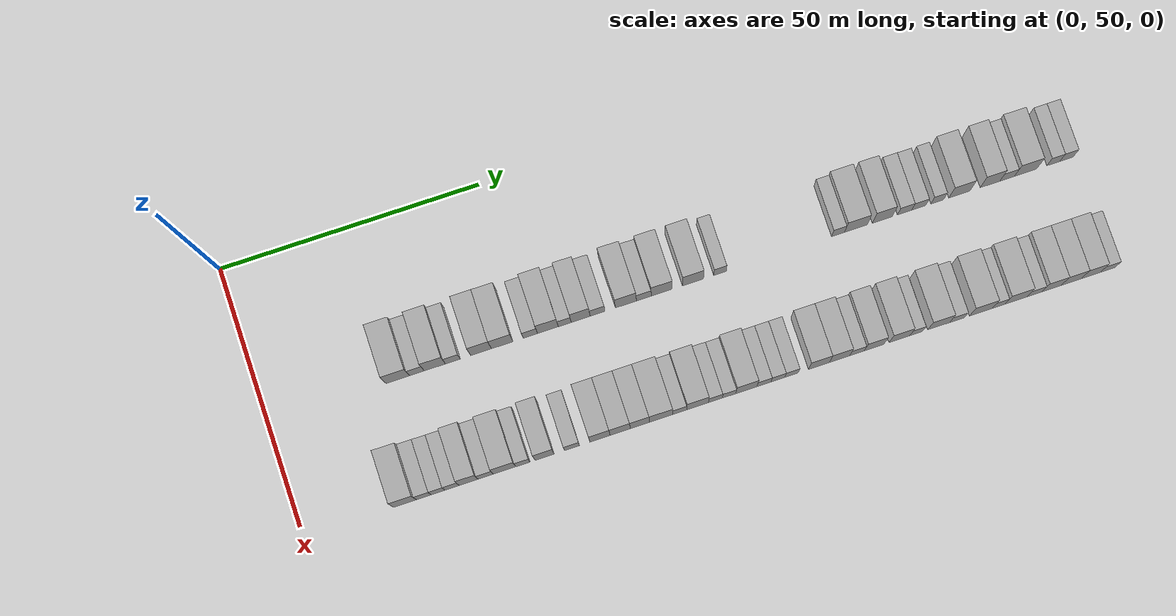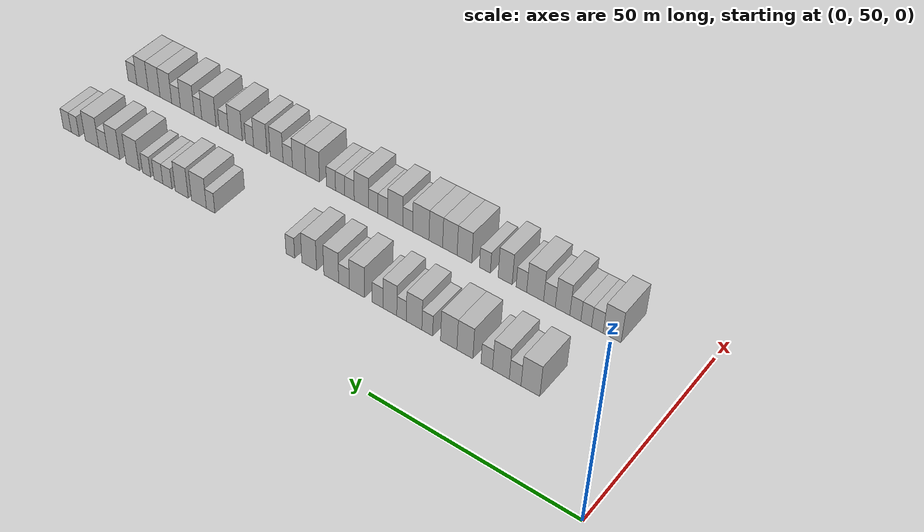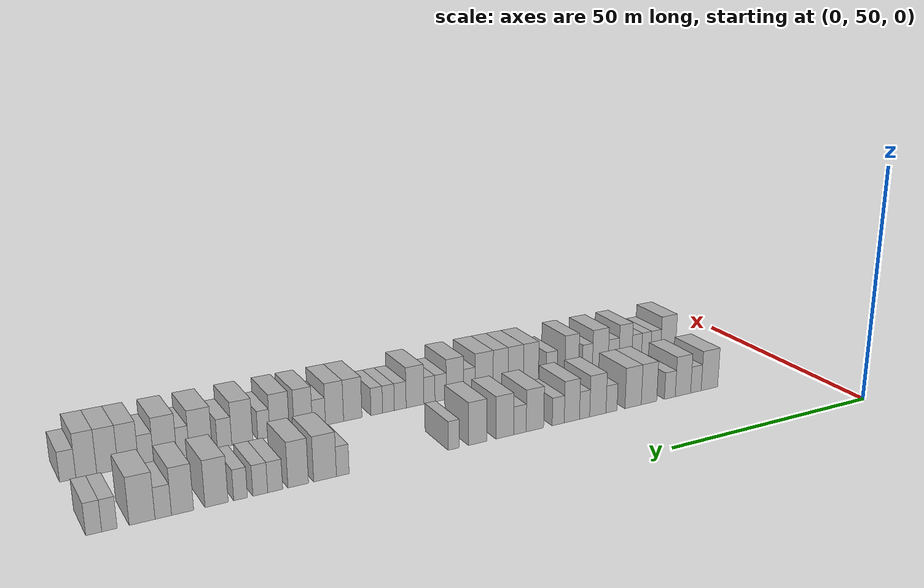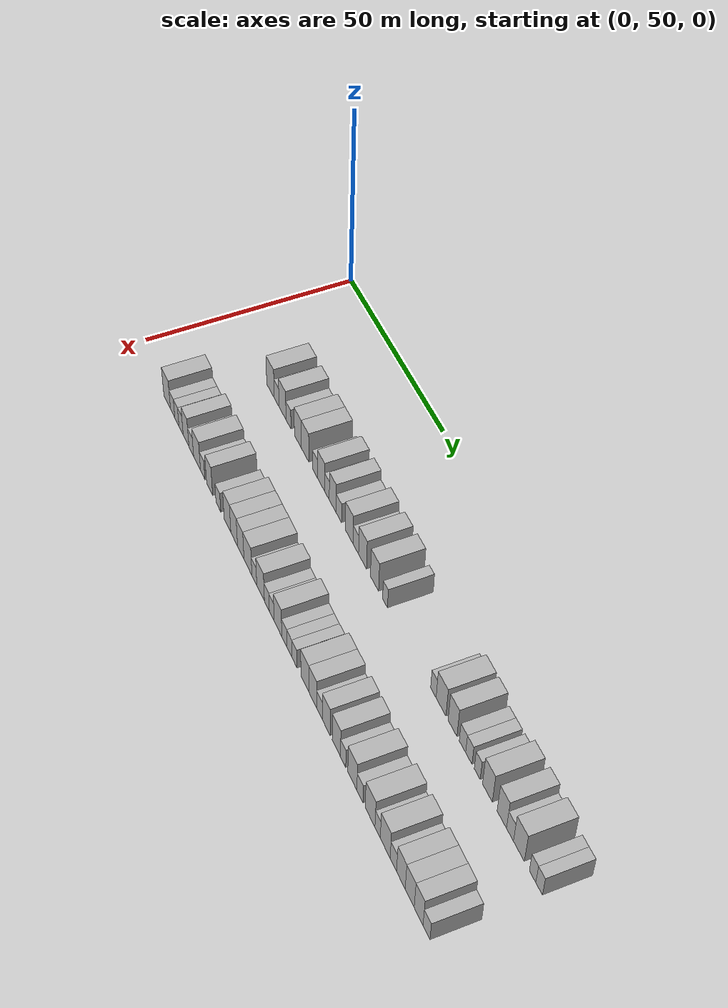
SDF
<sdf version="1.6">
 <world name="default">
  <model name="building_64">
   <static>1</static>
   <pose>25.0000 74.9126 0 0.000000 0.000000 0.000000</pose>
   <link name="link">
    <pose>0 0 4.50 0 0 0</pose>
    <collision name="collision"><geometry><box><size>10.0000 4.4943 9.0000</size></box></geometry></collision>
    <visual name="visual">
     <cast_shadows>0</cast_shadows>
     <geometry><box><size>10.0000 4.4943 9.0000</size></box></geometry>
     <material>
      <script>
       <uri>model://HANNAS_wall/materials/scripts</uri>
       <uri>model://HANNAS_wall/materials/textures</uri>
       <name>vrc/HANNAS_wall</name>
      </script>
     </material>
    </visual>
   </link>
  </model>
  <model name="building_65">
   <static>1</static>
   <pose>25.0000 78.5723 0 0.000000 0.000000 0.000000</pose>
   <link name="link">
    <pose>0 0 3.00 0 0 0</pose>
    <collision name="collision"><geometry><box><size>10.0000 2.8252 6.0000</size></box></geometry></collision>
    <visual name="visual">
     <cast_shadows>0</cast_shadows>
     <geometry><box><size>10.0000 2.8252 6.0000</size></box></geometry>
     <material>
      <script>
       <uri>model://HANNAS_wall/materials/scripts</uri>
       <uri>model://HANNAS_wall/materials/textures</uri>
       <name>vrc/HANNAS_wall</name>
      </script>
     </material>
    </visual>
   </link>
  </model>
  <model name="building_66">
   <static>1</static>
   <pose>25.0000 82.0260 0 0.000000 0.000000 0.000000</pose>
   <link name="link">
    <pose>0 0 4.50 0 0 0</pose>
    <collision name="collision"><geometry><box><size>10.0000 4.0823 9.0000</size></box></geometry></collision>
    <visual name="visual">
     <cast_shadows>0</cast_shadows>
     <geometry><box><size>10.0000 4.0823 9.0000</size></box></geometry>
     <material>
      <script>
       <uri>model://HANNAS_wall/materials/scripts</uri>
       <uri>model://HANNAS_wall/materials/textures</uri>
       <name>vrc/HANNAS_wall</name>
      </script>
     </material>
    </visual>
   </link>
  </model>
  <model name="building_67">
   <static>1</static>
   <pose>25.0000 85.4873 0 0.000000 0.000000 0.000000</pose>
   <link name="link">
    <pose>0 0 3.00 0 0 0</pose>
    <collision name="collision"><geometry><box><size>10.0000 2.8402 6.0000</size></box></geometry></collision>
    <visual name="visual">
     <cast_shadows>0</cast_shadows>
     <geometry><box><size>10.0000 2.8402 6.0000</size></box></geometry>
     <material>
      <script>
       <uri>model://HANNAS_wall/materials/scripts</uri>
       <uri>model://HANNAS_wall/materials/textures</uri>
       <name>vrc/HANNAS_wall</name>
      </script>
     </material>
    </visual>
   </link>
  </model>
  <model name="building_68">
   <static>1</static>
   <pose>25.0000 90.8991 0 0.000000 0.000000 0.000000</pose>
   <link name="link">
    <pose>0 0 4.50 0 0 0</pose>
    <collision name="collision"><geometry><box><size>10.0000 3.9835 9.0000</size></box></geometry></collision>
    <visual name="visual">
     <cast_shadows>0</cast_shadows>
     <geometry><box><size>10.0000 3.9835 9.0000</size></box></geometry>
     <material>
      <script>
       <uri>model://HANNAS_wall/materials/scripts</uri>
       <uri>model://HANNAS_wall/materials/textures</uri>
       <name>vrc/HANNAS_wall</name>
      </script>
     </material>
    </visual>
   </link>
  </model>
  <model name="building_69">
   <static>1</static>
   <pose>25.0000 94.9540 0 0.000000 0.000000 0.000000</pose>
   <link name="link">
    <pose>0 0 4.50 0 0 0</pose>
    <collision name="collision"><geometry><box><size>10.0000 4.1263 9.0000</size></box></geometry></collision>
    <visual name="visual">
     <cast_shadows>0</cast_shadows>
     <geometry><box><size>10.0000 4.1263 9.0000</size></box></geometry>
     <material>
      <script>
       <uri>model://HANNAS_wall/materials/scripts</uri>
       <uri>model://HANNAS_wall/materials/textures</uri>
       <name>vrc/HANNAS_wall</name>
      </script>
     </material>
    </visual>
   </link>
  </model>
  <model name="building_70">
   <static>1</static>
   <pose>25.0000 100.3915 0 0.000000 0.000000 0.000000</pose>
   <link name="link">
    <pose>0 0 3.00 0 0 0</pose>
    <collision name="collision"><geometry><box><size>10.0000 2.7487 6.0000</size></box></geometry></collision>
    <visual name="visual">
     <cast_shadows>0</cast_shadows>
     <geometry><box><size>10.0000 2.7487 6.0000</size></box></geometry>
     <material>
      <script>
       <uri>model://HANNAS_wall/materials/scripts</uri>
       <uri>model://HANNAS_wall/materials/textures</uri>
       <name>vrc/HANNAS_wall</name>
      </script>
     </material>
    </visual>
   </link>
  </model>
  <model name="building_71">
   <static>1</static>
   <pose>25.0000 103.7699 0 0.000000 0.000000 0.000000</pose>
   <link name="link">
    <pose>0 0 4.50 0 0 0</pose>
    <collision name="collision"><geometry><box><size>10.0000 4.0080 9.0000</size></box></geometry></collision>
    <visual name="visual">
     <cast_shadows>0</cast_shadows>
     <geometry><box><size>10.0000 4.0080 9.0000</size></box></geometry>
     <material>
      <script>
       <uri>model://HANNAS_wall/materials/scripts</uri>
       <uri>model://HANNAS_wall/materials/textures</uri>
       <name>vrc/HANNAS_wall</name>
      </script>
     </material>
    </visual>
   </link>
  </model>
  <model name="building_72">
   <static>1</static>
   <pose>25.0000 107.0148 0 0.000000 0.000000 0.000000</pose>
   <link name="link">
    <pose>0 0 3.00 0 0 0</pose>
    <collision name="collision"><geometry><box><size>10.0000 2.4818 6.0000</size></box></geometry></collision>
    <visual name="visual">
     <cast_shadows>0</cast_shadows>
     <geometry><box><size>10.0000 2.4818 6.0000</size></box></geometry>
     <material>
      <script>
       <uri>model://HANNAS_wall/materials/scripts</uri>
       <uri>model://HANNAS_wall/materials/textures</uri>
       <name>vrc/HANNAS_wall</name>
      </script>
     </material>
    </visual>
   </link>
  </model>
  <model name="building_73">
   <static>1</static>
   <pose>25.0000 110.0817 0 0.000000 0.000000 0.000000</pose>
   <link name="link">
    <pose>0 0 4.50 0 0 0</pose>
    <collision name="collision"><geometry><box><size>10.0000 3.6520 9.0000</size></box></geometry></collision>
    <visual name="visual">
     <cast_shadows>0</cast_shadows>
     <geometry><box><size>10.0000 3.6520 9.0000</size></box></geometry>
     <material>
      <script>
       <uri>model://HANNAS_wall/materials/scripts</uri>
       <uri>model://HANNAS_wall/materials/textures</uri>
       <name>vrc/HANNAS_wall</name>
      </script>
     </material>
    </visual>
   </link>
  </model>
  <model name="building_74">
   <static>1</static>
   <pose>25.0000 113.3369 0 0.000000 0.000000 0.000000</pose>
   <link name="link">
    <pose>0 0 3.00 0 0 0</pose>
    <collision name="collision"><geometry><box><size>10.0000 2.8584 6.0000</size></box></geometry></collision>
    <visual name="visual">
     <cast_shadows>0</cast_shadows>
     <geometry><box><size>10.0000 2.8584 6.0000</size></box></geometry>
     <material>
      <script>
       <uri>model://HANNAS_wall/materials/scripts</uri>
       <uri>model://HANNAS_wall/materials/textures</uri>
       <name>vrc/HANNAS_wall</name>
      </script>
     </material>
    </visual>
   </link>
  </model>
  <model name="building_75">
   <static>1</static>
   <pose>25.0000 118.7987 0 0.000000 0.000000 0.000000</pose>
   <link name="link">
    <pose>0 0 4.50 0 0 0</pose>
    <collision name="collision"><geometry><box><size>10.0000 4.0652 9.0000</size></box></geometry></collision>
    <visual name="visual">
     <cast_shadows>0</cast_shadows>
     <geometry><box><size>10.0000 4.0652 9.0000</size></box></geometry>
     <material>
      <script>
       <uri>model://HANNAS_wall/materials/scripts</uri>
       <uri>model://HANNAS_wall/materials/textures</uri>
       <name>vrc/HANNAS_wall</name>
      </script>
     </material>
    </visual>
   </link>
  </model>
  <model name="building_76">
   <static>1</static>
   <pose>25.0000 122.2669 0 0.000000 0.000000 0.000000</pose>
   <link name="link">
    <pose>0 0 3.00 0 0 0</pose>
    <collision name="collision"><geometry><box><size>10.0000 2.8713 6.0000</size></box></geometry></collision>
    <visual name="visual">
     <cast_shadows>0</cast_shadows>
     <geometry><box><size>10.0000 2.8713 6.0000</size></box></geometry>
     <material>
      <script>
       <uri>model://HANNAS_wall/materials/scripts</uri>
       <uri>model://HANNAS_wall/materials/textures</uri>
       <name>vrc/HANNAS_wall</name>
      </script>
     </material>
    </visual>
   </link>
  </model>
  <model name="building_77">
   <static>1</static>
   <pose>25.0000 125.7237 0 0.000000 0.000000 0.000000</pose>
   <link name="link">
    <pose>0 0 4.50 0 0 0</pose>
    <collision name="collision"><geometry><box><size>10.0000 4.0424 9.0000</size></box></geometry></collision>
    <visual name="visual">
     <cast_shadows>0</cast_shadows>
     <geometry><box><size>10.0000 4.0424 9.0000</size></box></geometry>
     <material>
      <script>
       <uri>model://HANNAS_wall/materials/scripts</uri>
       <uri>model://HANNAS_wall/materials/textures</uri>
       <name>vrc/HANNAS_wall</name>
      </script>
     </material>
    </visual>
   </link>
  </model>
  <model name="building_78">
   <static>1</static>
   <pose>25.0000 131.7812 0 0.000000 0.000000 0.000000</pose>
   <link name="link">
    <pose>0 0 4.50 0 0 0</pose>
    <collision name="collision"><geometry><box><size>10.0000 4.0725 9.0000</size></box></geometry></collision>
    <visual name="visual">
     <cast_shadows>0</cast_shadows>
     <geometry><box><size>10.0000 4.0725 9.0000</size></box></geometry>
     <material>
      <script>
       <uri>model://HANNAS_wall/materials/scripts</uri>
       <uri>model://HANNAS_wall/materials/textures</uri>
       <name>vrc/HANNAS_wall</name>
      </script>
     </material>
    </visual>
   </link>
  </model>
  <model name="building_79">
   <static>1</static>
   <pose>25.0000 137.0326 0 0.000000 0.000000 0.000000</pose>
   <link name="link">
    <pose>0 0 3.00 0 0 0</pose>
    <collision name="collision"><geometry><box><size>10.0000 2.4304 6.0000</size></box></geometry></collision>
    <visual name="visual">
     <cast_shadows>0</cast_shadows>
     <geometry><box><size>10.0000 2.4304 6.0000</size></box></geometry>
     <material>
      <script>
       <uri>model://HANNAS_wall/materials/scripts</uri>
       <uri>model://HANNAS_wall/materials/textures</uri>
       <name>vrc/HANNAS_wall</name>
      </script>
     </material>
    </visual>
   </link>
  </model>
  <model name="building_80">
   <static>1</static>
   <pose>25.0000 160.0175 0 0.000000 0.000000 0.000000</pose>
   <link name="link">
    <pose>0 0 3.00 0 0 0</pose>
    <collision name="collision"><geometry><box><size>10.0000 2.5132 6.0000</size></box></geometry></collision>
    <visual name="visual">
     <cast_shadows>0</cast_shadows>
     <geometry><box><size>10.0000 2.5132 6.0000</size></box></geometry>
     <material>
      <script>
       <uri>model://HANNAS_wall/materials/scripts</uri>
       <uri>model://HANNAS_wall/materials/textures</uri>
       <name>vrc/HANNAS_wall</name>
      </script>
     </material>
    </visual>
   </link>
  </model>
  <model name="building_81">
   <static>1</static>
   <pose>25.0000 163.4964 0 0.000000 0.000000 0.000000</pose>
   <link name="link">
    <pose>0 0 4.50 0 0 0</pose>
    <collision name="collision"><geometry><box><size>10.0000 4.4446 9.0000</size></box></geometry></collision>
    <visual name="visual">
     <cast_shadows>0</cast_shadows>
     <geometry><box><size>10.0000 4.4446 9.0000</size></box></geometry>
     <material>
      <script>
       <uri>model://HANNAS_wall/materials/scripts</uri>
       <uri>model://HANNAS_wall/materials/textures</uri>
       <name>vrc/HANNAS_wall</name>
      </script>
     </material>
    </visual>
   </link>
  </model>
  <model name="building_82">
   <static>1</static>
   <pose>25.0000 168.6814 0 0.000000 0.000000 0.000000</pose>
   <link name="link">
    <pose>0 0 4.50 0 0 0</pose>
    <collision name="collision"><geometry><box><size>10.0000 3.9256 9.0000</size></box></geometry></collision>
    <visual name="visual">
     <cast_shadows>0</cast_shadows>
     <geometry><box><size>10.0000 3.9256 9.0000</size></box></geometry>
     <material>
      <script>
       <uri>model://HANNAS_wall/materials/scripts</uri>
       <uri>model://HANNAS_wall/materials/textures</uri>
       <name>vrc/HANNAS_wall</name>
      </script>
     </material>
    </visual>
   </link>
  </model>
  <model name="building_83">
   <static>1</static>
   <pose>25.0000 173.0471 0 0.000000 0.000000 0.000000</pose>
   <link name="link">
    <pose>0 0 3.00 0 0 0</pose>
    <collision name="collision"><geometry><box><size>10.0000 2.8058 6.0000</size></box></geometry></collision>
    <visual name="visual">
     <cast_shadows>0</cast_shadows>
     <geometry><box><size>10.0000 2.8058 6.0000</size></box></geometry>
     <material>
      <script>
       <uri>model://HANNAS_wall/materials/scripts</uri>
       <uri>model://HANNAS_wall/materials/textures</uri>
       <name>vrc/HANNAS_wall</name>
      </script>
     </material>
    </visual>
   </link>
  </model>
  <model name="building_84">
   <static>1</static>
   <pose>25.0000 175.8218 0 0.000000 0.000000 0.000000</pose>
   <link name="link">
    <pose>0 0 3.00 0 0 0</pose>
    <collision name="collision"><geometry><box><size>10.0000 2.7435 6.0000</size></box></geometry></collision>
    <visual name="visual">
     <cast_shadows>0</cast_shadows>
     <geometry><box><size>10.0000 2.7435 6.0000</size></box></geometry>
     <material>
      <script>
       <uri>model://HANNAS_wall/materials/scripts</uri>
       <uri>model://HANNAS_wall/materials/textures</uri>
       <name>vrc/HANNAS_wall</name>
      </script>
     </material>
    </visual>
   </link>
  </model>
  <model name="building_85">
   <static>1</static>
   <pose>25.0000 179.4524 0 0.000000 0.000000 0.000000</pose>
   <link name="link">
    <pose>0 0 3.00 0 0 0</pose>
    <collision name="collision"><geometry><box><size>10.0000 2.5176 6.0000</size></box></geometry></collision>
    <visual name="visual">
     <cast_shadows>0</cast_shadows>
     <geometry><box><size>10.0000 2.5176 6.0000</size></box></geometry>
     <material>
      <script>
       <uri>model://HANNAS_wall/materials/scripts</uri>
       <uri>model://HANNAS_wall/materials/textures</uri>
       <name>vrc/HANNAS_wall</name>
      </script>
     </material>
    </visual>
   </link>
  </model>
  <model name="building_86">
   <static>1</static>
   <pose>25.0000 183.7925 0 0.000000 0.000000 0.000000</pose>
   <link name="link">
    <pose>0 0 4.50 0 0 0</pose>
    <collision name="collision"><geometry><box><size>10.0000 4.1626 9.0000</size></box></geometry></collision>
    <visual name="visual">
     <cast_shadows>0</cast_shadows>
     <geometry><box><size>10.0000 4.1626 9.0000</size></box></geometry>
     <material>
      <script>
       <uri>model://HANNAS_wall/materials/scripts</uri>
       <uri>model://HANNAS_wall/materials/textures</uri>
       <name>vrc/HANNAS_wall</name>
      </script>
     </material>
    </visual>
   </link>
  </model>
  <model name="building_87">
   <static>1</static>
   <pose>25.0000 189.8081 0 0.000000 0.000000 0.000000</pose>
   <link name="link">
    <pose>0 0 4.50 0 0 0</pose>
    <collision name="collision"><geometry><box><size>10.0000 3.8686 9.0000</size></box></geometry></collision>
    <visual name="visual">
     <cast_shadows>0</cast_shadows>
     <geometry><box><size>10.0000 3.8686 9.0000</size></box></geometry>
     <material>
      <script>
       <uri>model://HANNAS_wall/materials/scripts</uri>
       <uri>model://HANNAS_wall/materials/textures</uri>
       <name>vrc/HANNAS_wall</name>
      </script>
     </material>
    </visual>
   </link>
  </model>
  <model name="building_88">
   <static>1</static>
   <pose>25.0000 193.1677 0 0.000000 0.000000 0.000000</pose>
   <link name="link">
    <pose>0 0 3.00 0 0 0</pose>
    <collision name="collision"><geometry><box><size>10.0000 2.8506 6.0000</size></box></geometry></collision>
    <visual name="visual">
     <cast_shadows>0</cast_shadows>
     <geometry><box><size>10.0000 2.8506 6.0000</size></box></geometry>
     <material>
      <script>
       <uri>model://HANNAS_wall/materials/scripts</uri>
       <uri>model://HANNAS_wall/materials/textures</uri>
       <name>vrc/HANNAS_wall</name>
      </script>
     </material>
    </visual>
   </link>
  </model>
  <model name="building_89">
   <static>1</static>
   <pose>25.0000 196.7887 0 0.000000 0.000000 0.000000</pose>
   <link name="link">
    <pose>0 0 4.50 0 0 0</pose>
    <collision name="collision"><geometry><box><size>10.0000 4.3914 9.0000</size></box></geometry></collision>
    <visual name="visual">
     <cast_shadows>0</cast_shadows>
     <geometry><box><size>10.0000 4.3914 9.0000</size></box></geometry>
     <material>
      <script>
       <uri>model://HANNAS_wall/materials/scripts</uri>
       <uri>model://HANNAS_wall/materials/textures</uri>
       <name>vrc/HANNAS_wall</name>
      </script>
     </material>
    </visual>
   </link>
  </model>
  <model name="building_90">
   <static>1</static>
   <pose>25.0000 202.2624 0 0.000000 0.000000 0.000000</pose>
   <link name="link">
    <pose>0 0 3.00 0 0 0</pose>
    <collision name="collision"><geometry><box><size>10.0000 2.5562 6.0000</size></box></geometry></collision>
    <visual name="visual">
     <cast_shadows>0</cast_shadows>
     <geometry><box><size>10.0000 2.5562 6.0000</size></box></geometry>
     <material>
      <script>
       <uri>model://HANNAS_wall/materials/scripts</uri>
       <uri>model://HANNAS_wall/materials/textures</uri>
       <name>vrc/HANNAS_wall</name>
      </script>
     </material>
    </visual>
   </link>
  </model>
  <model name="building_91">
   <static>1</static>
   <pose>25.0000 204.8591 0 0.000000 0.000000 0.000000</pose>
   <link name="link">
    <pose>0 0 3.00 0 0 0</pose>
    <collision name="collision"><geometry><box><size>10.0000 2.6372 6.0000</size></box></geometry></collision>
    <visual name="visual">
     <cast_shadows>0</cast_shadows>
     <geometry><box><size>10.0000 2.6372 6.0000</size></box></geometry>
     <material>
      <script>
       <uri>model://HANNAS_wall/materials/scripts</uri>
       <uri>model://HANNAS_wall/materials/textures</uri>
       <name>vrc/HANNAS_wall</name>
      </script>
     </material>
    </visual>
   </link>
  </model>
  <model name="building_159">
   <static>1</static>
   <pose>47.0000 69.4267 0 0.000000 0.000000 0.000000</pose>
   <link name="link">
    <pose>0 0 4.50 0 0 0</pose>
    <collision name="collision"><geometry><box><size>10.0000 4.3211 9.0000</size></box></geometry></collision>
    <visual name="visual">
     <cast_shadows>0</cast_shadows>
     <geometry><box><size>10.0000 4.3211 9.0000</size></box></geometry>
     <material>
      <script>
       <uri>model://HANNAS_wall/materials/scripts</uri>
       <uri>model://HANNAS_wall/materials/textures</uri>
       <name>vrc/HANNAS_wall</name>
      </script>
     </material>
    </visual>
   </link>
  </model>
  <model name="building_160">
   <static>1</static>
   <pose>47.0000 72.9837 0 0.000000 0.000000 0.000000</pose>
   <link name="link">
    <pose>0 0 3.00 0 0 0</pose>
    <collision name="collision"><geometry><box><size>10.0000 2.7928 6.0000</size></box></geometry></collision>
    <visual name="visual">
     <cast_shadows>0</cast_shadows>
     <geometry><box><size>10.0000 2.7928 6.0000</size></box></geometry>
     <material>
      <script>
       <uri>model://HANNAS_wall/materials/scripts</uri>
       <uri>model://HANNAS_wall/materials/textures</uri>
       <name>vrc/HANNAS_wall</name>
      </script>
     </material>
    </visual>
   </link>
  </model>
  <model name="building_161">
   <static>1</static>
   <pose>47.0000 75.6870 0 0.000000 0.000000 0.000000</pose>
   <link name="link">
    <pose>0 0 3.00 0 0 0</pose>
    <collision name="collision"><geometry><box><size>10.0000 2.6137 6.0000</size></box></geometry></collision>
    <visual name="visual">
     <cast_shadows>0</cast_shadows>
     <geometry><box><size>10.0000 2.6137 6.0000</size></box></geometry>
     <material>
      <script>
       <uri>model://HANNAS_wall/materials/scripts</uri>
       <uri>model://HANNAS_wall/materials/textures</uri>
       <name>vrc/HANNAS_wall</name>
      </script>
     </material>
    </visual>
   </link>
  </model>
  <model name="building_162">
   <static>1</static>
   <pose>47.0000 78.3457 0 0.000000 0.000000 0.000000</pose>
   <link name="link">
    <pose>0 0 3.00 0 0 0</pose>
    <collision name="collision"><geometry><box><size>10.0000 2.7037 6.0000</size></box></geometry></collision>
    <visual name="visual">
     <cast_shadows>0</cast_shadows>
     <geometry><box><size>10.0000 2.7037 6.0000</size></box></geometry>
     <material>
      <script>
       <uri>model://HANNAS_wall/materials/scripts</uri>
       <uri>model://HANNAS_wall/materials/textures</uri>
       <name>vrc/HANNAS_wall</name>
      </script>
     </material>
    </visual>
   </link>
  </model>
  <model name="building_163">
   <static>1</static>
   <pose>47.0000 81.5023 0 0.000000 0.000000 0.000000</pose>
   <link name="link">
    <pose>0 0 4.50 0 0 0</pose>
    <collision name="collision"><geometry><box><size>10.0000 3.6095 9.0000</size></box></geometry></collision>
    <visual name="visual">
     <cast_shadows>0</cast_shadows>
     <geometry><box><size>10.0000 3.6095 9.0000</size></box></geometry>
     <material>
      <script>
       <uri>model://HANNAS_wall/materials/scripts</uri>
       <uri>model://HANNAS_wall/materials/textures</uri>
       <name>vrc/HANNAS_wall</name>
      </script>
     </material>
    </visual>
   </link>
  </model>
  <model name="building_164">
   <static>1</static>
   <pose>47.0000 84.7616 0 0.000000 0.000000 0.000000</pose>
   <link name="link">
    <pose>0 0 3.00 0 0 0</pose>
    <collision name="collision"><geometry><box><size>10.0000 2.9091 6.0000</size></box></geometry></collision>
    <visual name="visual">
     <cast_shadows>0</cast_shadows>
     <geometry><box><size>10.0000 2.9091 6.0000</size></box></geometry>
     <material>
      <script>
       <uri>model://HANNAS_wall/materials/scripts</uri>
       <uri>model://HANNAS_wall/materials/textures</uri>
       <name>vrc/HANNAS_wall</name>
      </script>
     </material>
    </visual>
   </link>
  </model>
  <model name="building_165">
   <static>1</static>
   <pose>47.0000 88.3496 0 0.000000 0.000000 0.000000</pose>
   <link name="link">
    <pose>0 0 4.50 0 0 0</pose>
    <collision name="collision"><geometry><box><size>10.0000 4.2671 9.0000</size></box></geometry></collision>
    <visual name="visual">
     <cast_shadows>0</cast_shadows>
     <geometry><box><size>10.0000 4.2671 9.0000</size></box></geometry>
     <material>
      <script>
       <uri>model://HANNAS_wall/materials/scripts</uri>
       <uri>model://HANNAS_wall/materials/textures</uri>
       <name>vrc/HANNAS_wall</name>
      </script>
     </material>
    </visual>
   </link>
  </model>
  <model name="building_166">
   <static>1</static>
   <pose>47.0000 91.8281 0 0.000000 0.000000 0.000000</pose>
   <link name="link">
    <pose>0 0 3.00 0 0 0</pose>
    <collision name="collision"><geometry><box><size>10.0000 2.6900 6.0000</size></box></geometry></collision>
    <visual name="visual">
     <cast_shadows>0</cast_shadows>
     <geometry><box><size>10.0000 2.6900 6.0000</size></box></geometry>
     <material>
      <script>
       <uri>model://HANNAS_wall/materials/scripts</uri>
       <uri>model://HANNAS_wall/materials/textures</uri>
       <name>vrc/HANNAS_wall</name>
      </script>
     </material>
    </visual>
   </link>
  </model>
  <model name="building_167">
   <static>1</static>
   <pose>47.0000 95.9856 0 0.000000 0.000000 0.000000</pose>
   <link name="link">
    <pose>0 0 4.50 0 0 0</pose>
    <collision name="collision"><geometry><box><size>10.0000 3.6250 9.0000</size></box></geometry></collision>
    <visual name="visual">
     <cast_shadows>0</cast_shadows>
     <geometry><box><size>10.0000 3.6250 9.0000</size></box></geometry>
     <material>
      <script>
       <uri>model://HANNAS_wall/materials/scripts</uri>
       <uri>model://HANNAS_wall/materials/textures</uri>
       <name>vrc/HANNAS_wall</name>
      </script>
     </material>
    </visual>
   </link>
  </model>
  <model name="building_168">
   <static>1</static>
   <pose>47.0000 101.2228 0 0.000000 0.000000 0.000000</pose>
   <link name="link">
    <pose>0 0 3.00 0 0 0</pose>
    <collision name="collision"><geometry><box><size>10.0000 2.8494 6.0000</size></box></geometry></collision>
    <visual name="visual">
     <cast_shadows>0</cast_shadows>
     <geometry><box><size>10.0000 2.8494 6.0000</size></box></geometry>
     <material>
      <script>
       <uri>model://HANNAS_wall/materials/scripts</uri>
       <uri>model://HANNAS_wall/materials/textures</uri>
       <name>vrc/HANNAS_wall</name>
      </script>
     </material>
    </visual>
   </link>
  </model>
  <model name="building_169">
   <static>1</static>
   <pose>47.0000 106.5791 0 0.000000 0.000000 0.000000</pose>
   <link name="link">
    <pose>0 0 4.50 0 0 0</pose>
    <collision name="collision"><geometry><box><size>10.0000 3.8634 9.0000</size></box></geometry></collision>
    <visual name="visual">
     <cast_shadows>0</cast_shadows>
     <geometry><box><size>10.0000 3.8634 9.0000</size></box></geometry>
     <material>
      <script>
       <uri>model://HANNAS_wall/materials/scripts</uri>
       <uri>model://HANNAS_wall/materials/textures</uri>
       <name>vrc/HANNAS_wall</name>
      </script>
     </material>
    </visual>
   </link>
  </model>
  <model name="building_170">
   <static>1</static>
   <pose>47.0000 110.4432 0 0.000000 0.000000 0.000000</pose>
   <link name="link">
    <pose>0 0 4.50 0 0 0</pose>
    <collision name="collision"><geometry><box><size>10.0000 3.8647 9.0000</size></box></geometry></collision>
    <visual name="visual">
     <cast_shadows>0</cast_shadows>
     <geometry><box><size>10.0000 3.8647 9.0000</size></box></geometry>
     <material>
      <script>
       <uri>model://HANNAS_wall/materials/scripts</uri>
       <uri>model://HANNAS_wall/materials/textures</uri>
       <name>vrc/HANNAS_wall</name>
      </script>
     </material>
    </visual>
   </link>
  </model>
  <model name="building_171">
   <static>1</static>
   <pose>47.0000 114.2092 0 0.000000 0.000000 0.000000</pose>
   <link name="link">
    <pose>0 0 4.50 0 0 0</pose>
    <collision name="collision"><geometry><box><size>10.0000 3.6671 9.0000</size></box></geometry></collision>
    <visual name="visual">
     <cast_shadows>0</cast_shadows>
     <geometry><box><size>10.0000 3.6671 9.0000</size></box></geometry>
     <material>
      <script>
       <uri>model://HANNAS_wall/materials/scripts</uri>
       <uri>model://HANNAS_wall/materials/textures</uri>
       <name>vrc/HANNAS_wall</name>
      </script>
     </material>
    </visual>
   </link>
  </model>
  <model name="building_172">
   <static>1</static>
   <pose>47.0000 118.2589 0 0.000000 0.000000 0.000000</pose>
   <link name="link">
    <pose>0 0 4.50 0 0 0</pose>
    <collision name="collision"><geometry><box><size>10.0000 4.4325 9.0000</size></box></geometry></collision>
    <visual name="visual">
     <cast_shadows>0</cast_shadows>
     <geometry><box><size>10.0000 4.4325 9.0000</size></box></geometry>
     <material>
      <script>
       <uri>model://HANNAS_wall/materials/scripts</uri>
       <uri>model://HANNAS_wall/materials/textures</uri>
       <name>vrc/HANNAS_wall</name>
      </script>
     </material>
    </visual>
   </link>
  </model>
  <model name="building_173">
   <static>1</static>
   <pose>47.0000 121.8299 0 0.000000 0.000000 0.000000</pose>
   <link name="link">
    <pose>0 0 3.00 0 0 0</pose>
    <collision name="collision"><geometry><box><size>10.0000 2.7095 6.0000</size></box></geometry></collision>
    <visual name="visual">
     <cast_shadows>0</cast_shadows>
     <geometry><box><size>10.0000 2.7095 6.0000</size></box></geometry>
     <material>
      <script>
       <uri>model://HANNAS_wall/materials/scripts</uri>
       <uri>model://HANNAS_wall/materials/textures</uri>
       <name>vrc/HANNAS_wall</name>
      </script>
     </material>
    </visual>
   </link>
  </model>
  <model name="building_174">
   <static>1</static>
   <pose>47.0000 125.2822 0 0.000000 0.000000 0.000000</pose>
   <link name="link">
    <pose>0 0 4.50 0 0 0</pose>
    <collision name="collision"><geometry><box><size>10.0000 4.1950 9.0000</size></box></geometry></collision>
    <visual name="visual">
     <cast_shadows>0</cast_shadows>
     <geometry><box><size>10.0000 4.1950 9.0000</size></box></geometry>
     <material>
      <script>
       <uri>model://HANNAS_wall/materials/scripts</uri>
       <uri>model://HANNAS_wall/materials/textures</uri>
       <name>vrc/HANNAS_wall</name>
      </script>
     </material>
    </visual>
   </link>
  </model>
  <model name="building_175">
   <static>1</static>
   <pose>47.0000 128.7130 0 0.000000 0.000000 0.000000</pose>
   <link name="link">
    <pose>0 0 3.00 0 0 0</pose>
    <collision name="collision"><geometry><box><size>10.0000 2.6665 6.0000</size></box></geometry></collision>
    <visual name="visual">
     <cast_shadows>0</cast_shadows>
     <geometry><box><size>10.0000 2.6665 6.0000</size></box></geometry>
     <material>
      <script>
       <uri>model://HANNAS_wall/materials/scripts</uri>
       <uri>model://HANNAS_wall/materials/textures</uri>
       <name>vrc/HANNAS_wall</name>
      </script>
     </material>
    </visual>
   </link>
  </model>
  <model name="building_176">
   <static>1</static>
   <pose>47.0000 131.3461 0 0.000000 0.000000 0.000000</pose>
   <link name="link">
    <pose>0 0 3.00 0 0 0</pose>
    <collision name="collision"><geometry><box><size>10.0000 2.5998 6.0000</size></box></geometry></collision>
    <visual name="visual">
     <cast_shadows>0</cast_shadows>
     <geometry><box><size>10.0000 2.5998 6.0000</size></box></geometry>
     <material>
      <script>
       <uri>model://HANNAS_wall/materials/scripts</uri>
       <uri>model://HANNAS_wall/materials/textures</uri>
       <name>vrc/HANNAS_wall</name>
      </script>
     </material>
    </visual>
   </link>
  </model>
  <model name="building_177">
   <static>1</static>
   <pose>47.0000 134.6909 0 0.000000 0.000000 0.000000</pose>
   <link name="link">
    <pose>0 0 4.50 0 0 0</pose>
    <collision name="collision"><geometry><box><size>10.0000 4.0898 9.0000</size></box></geometry></collision>
    <visual name="visual">
     <cast_shadows>0</cast_shadows>
     <geometry><box><size>10.0000 4.0898 9.0000</size></box></geometry>
     <material>
      <script>
       <uri>model://HANNAS_wall/materials/scripts</uri>
       <uri>model://HANNAS_wall/materials/textures</uri>
       <name>vrc/HANNAS_wall</name>
      </script>
     </material>
    </visual>
   </link>
  </model>
  <model name="building_178">
   <static>1</static>
   <pose>47.0000 138.0848 0 0.000000 0.000000 0.000000</pose>
   <link name="link">
    <pose>0 0 3.00 0 0 0</pose>
    <collision name="collision"><geometry><box><size>10.0000 2.6980 6.0000</size></box></geometry></collision>
    <visual name="visual">
     <cast_shadows>0</cast_shadows>
     <geometry><box><size>10.0000 2.6980 6.0000</size></box></geometry>
     <material>
      <script>
       <uri>model://HANNAS_wall/materials/scripts</uri>
       <uri>model://HANNAS_wall/materials/textures</uri>
       <name>vrc/HANNAS_wall</name>
      </script>
     </material>
    </visual>
   </link>
  </model>
  <model name="building_179">
   <static>1</static>
   <pose>47.0000 140.7570 0 0.000000 0.000000 0.000000</pose>
   <link name="link">
    <pose>0 0 3.00 0 0 0</pose>
    <collision name="collision"><geometry><box><size>10.0000 2.6464 6.0000</size></box></geometry></collision>
    <visual name="visual">
     <cast_shadows>0</cast_shadows>
     <geometry><box><size>10.0000 2.6464 6.0000</size></box></geometry>
     <material>
      <script>
       <uri>model://HANNAS_wall/materials/scripts</uri>
       <uri>model://HANNAS_wall/materials/textures</uri>
       <name>vrc/HANNAS_wall</name>
      </script>
     </material>
    </visual>
   </link>
  </model>
  <model name="building_180">
   <static>1</static>
   <pose>47.0000 143.3862 0 0.000000 0.000000 0.000000</pose>
   <link name="link">
    <pose>0 0 3.00 0 0 0</pose>
    <collision name="collision"><geometry><box><size>10.0000 2.6120 6.0000</size></box></geometry></collision>
    <visual name="visual">
     <cast_shadows>0</cast_shadows>
     <geometry><box><size>10.0000 2.6120 6.0000</size></box></geometry>
     <material>
      <script>
       <uri>model://HANNAS_wall/materials/scripts</uri>
       <uri>model://HANNAS_wall/materials/textures</uri>
       <name>vrc/HANNAS_wall</name>
      </script>
     </material>
    </visual>
   </link>
  </model>
  <model name="building_181">
   <static>1</static>
   <pose>47.0000 148.7116 0 0.000000 0.000000 0.000000</pose>
   <link name="link">
    <pose>0 0 4.50 0 0 0</pose>
    <collision name="collision"><geometry><box><size>10.0000 4.0387 9.0000</size></box></geometry></collision>
    <visual name="visual">
     <cast_shadows>0</cast_shadows>
     <geometry><box><size>10.0000 4.0387 9.0000</size></box></geometry>
     <material>
      <script>
       <uri>model://HANNAS_wall/materials/scripts</uri>
       <uri>model://HANNAS_wall/materials/textures</uri>
       <name>vrc/HANNAS_wall</name>
      </script>
     </material>
    </visual>
   </link>
  </model>
  <model name="building_182">
   <static>1</static>
   <pose>47.0000 152.6869 0 0.000000 0.000000 0.000000</pose>
   <link name="link">
    <pose>0 0 4.50 0 0 0</pose>
    <collision name="collision"><geometry><box><size>10.0000 3.9119 9.0000</size></box></geometry></collision>
    <visual name="visual">
     <cast_shadows>0</cast_shadows>
     <geometry><box><size>10.0000 3.9119 9.0000</size></box></geometry>
     <material>
      <script>
       <uri>model://HANNAS_wall/materials/scripts</uri>
       <uri>model://HANNAS_wall/materials/textures</uri>
       <name>vrc/HANNAS_wall</name>
      </script>
     </material>
    </visual>
   </link>
  </model>
  <model name="building_183">
   <static>1</static>
   <pose>47.0000 156.0376 0 0.000000 0.000000 0.000000</pose>
   <link name="link">
    <pose>0 0 3.00 0 0 0</pose>
    <collision name="collision"><geometry><box><size>10.0000 2.7895 6.0000</size></box></geometry></collision>
    <visual name="visual">
     <cast_shadows>0</cast_shadows>
     <geometry><box><size>10.0000 2.7895 6.0000</size></box></geometry>
     <material>
      <script>
       <uri>model://HANNAS_wall/materials/scripts</uri>
       <uri>model://HANNAS_wall/materials/textures</uri>
       <name>vrc/HANNAS_wall</name>
      </script>
     </material>
    </visual>
   </link>
  </model>
  <model name="building_184">
   <static>1</static>
   <pose>47.0000 159.3592 0 0.000000 0.000000 0.000000</pose>
   <link name="link">
    <pose>0 0 4.50 0 0 0</pose>
    <collision name="collision"><geometry><box><size>10.0000 3.8536 9.0000</size></box></geometry></collision>
    <visual name="visual">
     <cast_shadows>0</cast_shadows>
     <geometry><box><size>10.0000 3.8536 9.0000</size></box></geometry>
     <material>
      <script>
       <uri>model://HANNAS_wall/materials/scripts</uri>
       <uri>model://HANNAS_wall/materials/textures</uri>
       <name>vrc/HANNAS_wall</name>
      </script>
     </material>
    </visual>
   </link>
  </model>
  <model name="building_185">
   <static>1</static>
   <pose>47.0000 164.2948 0 0.000000 0.000000 0.000000</pose>
   <link name="link">
    <pose>0 0 4.50 0 0 0</pose>
    <collision name="collision"><geometry><box><size>10.0000 4.0178 9.0000</size></box></geometry></collision>
    <visual name="visual">
     <cast_shadows>0</cast_shadows>
     <geometry><box><size>10.0000 4.0178 9.0000</size></box></geometry>
     <material>
      <script>
       <uri>model://HANNAS_wall/materials/scripts</uri>
       <uri>model://HANNAS_wall/materials/textures</uri>
       <name>vrc/HANNAS_wall</name>
      </script>
     </material>
    </visual>
   </link>
  </model>
  <model name="building_186">
   <static>1</static>
   <pose>47.0000 167.5471 0 0.000000 0.000000 0.000000</pose>
   <link name="link">
    <pose>0 0 3.00 0 0 0</pose>
    <collision name="collision"><geometry><box><size>10.0000 2.4867 6.0000</size></box></geometry></collision>
    <visual name="visual">
     <cast_shadows>0</cast_shadows>
     <geometry><box><size>10.0000 2.4867 6.0000</size></box></geometry>
     <material>
      <script>
       <uri>model://HANNAS_wall/materials/scripts</uri>
       <uri>model://HANNAS_wall/materials/textures</uri>
       <name>vrc/HANNAS_wall</name>
      </script>
     </material>
    </visual>
   </link>
  </model>
  <model name="building_187">
   <static>1</static>
   <pose>47.0000 171.9200 0 0.000000 0.000000 0.000000</pose>
   <link name="link">
    <pose>0 0 4.50 0 0 0</pose>
    <collision name="collision"><geometry><box><size>10.0000 4.2591 9.0000</size></box></geometry></collision>
    <visual name="visual">
     <cast_shadows>0</cast_shadows>
     <geometry><box><size>10.0000 4.2591 9.0000</size></box></geometry>
     <material>
      <script>
       <uri>model://HANNAS_wall/materials/scripts</uri>
       <uri>model://HANNAS_wall/materials/textures</uri>
       <name>vrc/HANNAS_wall</name>
      </script>
     </material>
    </visual>
   </link>
  </model>
  <model name="building_188">
   <static>1</static>
   <pose>47.0000 175.4857 0 0.000000 0.000000 0.000000</pose>
   <link name="link">
    <pose>0 0 3.00 0 0 0</pose>
    <collision name="collision"><geometry><box><size>10.0000 2.8724 6.0000</size></box></geometry></collision>
    <visual name="visual">
     <cast_shadows>0</cast_shadows>
     <geometry><box><size>10.0000 2.8724 6.0000</size></box></geometry>
     <material>
      <script>
       <uri>model://HANNAS_wall/materials/scripts</uri>
       <uri>model://HANNAS_wall/materials/textures</uri>
       <name>vrc/HANNAS_wall</name>
      </script>
     </material>
    </visual>
   </link>
  </model>
  <model name="building_189">
   <static>1</static>
   <pose>47.0000 180.1593 0 0.000000 0.000000 0.000000</pose>
   <link name="link">
    <pose>0 0 4.50 0 0 0</pose>
    <collision name="collision"><geometry><box><size>10.0000 4.4749 9.0000</size></box></geometry></collision>
    <visual name="visual">
     <cast_shadows>0</cast_shadows>
     <geometry><box><size>10.0000 4.4749 9.0000</size></box></geometry>
     <material>
      <script>
       <uri>model://HANNAS_wall/materials/scripts</uri>
       <uri>model://HANNAS_wall/materials/textures</uri>
       <name>vrc/HANNAS_wall</name>
      </script>
     </material>
    </visual>
   </link>
  </model>
  <model name="building_190">
   <static>1</static>
   <pose>47.0000 183.5977 0 0.000000 0.000000 0.000000</pose>
   <link name="link">
    <pose>0 0 3.00 0 0 0</pose>
    <collision name="collision"><geometry><box><size>10.0000 2.4018 6.0000</size></box></geometry></collision>
    <visual name="visual">
     <cast_shadows>0</cast_shadows>
     <geometry><box><size>10.0000 2.4018 6.0000</size></box></geometry>
     <material>
      <script>
       <uri>model://HANNAS_wall/materials/scripts</uri>
       <uri>model://HANNAS_wall/materials/textures</uri>
       <name>vrc/HANNAS_wall</name>
      </script>
     </material>
    </visual>
   </link>
  </model>
  <model name="building_191">
   <static>1</static>
   <pose>47.0000 186.9997 0 0.000000 0.000000 0.000000</pose>
   <link name="link">
    <pose>0 0 4.50 0 0 0</pose>
    <collision name="collision"><geometry><box><size>10.0000 4.4021 9.0000</size></box></geometry></collision>
    <visual name="visual">
     <cast_shadows>0</cast_shadows>
     <geometry><box><size>10.0000 4.4021 9.0000</size></box></geometry>
     <material>
      <script>
       <uri>model://HANNAS_wall/materials/scripts</uri>
       <uri>model://HANNAS_wall/materials/textures</uri>
       <name>vrc/HANNAS_wall</name>
      </script>
     </material>
    </visual>
   </link>
  </model>
  <model name="building_192">
   <static>1</static>
   <pose>47.0000 190.6104 0 0.000000 0.000000 0.000000</pose>
   <link name="link">
    <pose>0 0 3.00 0 0 0</pose>
    <collision name="collision"><geometry><box><size>10.0000 2.8193 6.0000</size></box></geometry></collision>
    <visual name="visual">
     <cast_shadows>0</cast_shadows>
     <geometry><box><size>10.0000 2.8193 6.0000</size></box></geometry>
     <material>
      <script>
       <uri>model://HANNAS_wall/materials/scripts</uri>
       <uri>model://HANNAS_wall/materials/textures</uri>
       <name>vrc/HANNAS_wall</name>
      </script>
     </material>
    </visual>
   </link>
  </model>
  <model name="building_193">
   <static>1</static>
   <pose>47.0000 193.9112 0 0.000000 0.000000 0.000000</pose>
   <link name="link">
    <pose>0 0 4.50 0 0 0</pose>
    <collision name="collision"><geometry><box><size>10.0000 3.7823 9.0000</size></box></geometry></collision>
    <visual name="visual">
     <cast_shadows>0</cast_shadows>
     <geometry><box><size>10.0000 3.7823 9.0000</size></box></geometry>
     <material>
      <script>
       <uri>model://HANNAS_wall/materials/scripts</uri>
       <uri>model://HANNAS_wall/materials/textures</uri>
       <name>vrc/HANNAS_wall</name>
      </script>
     </material>
    </visual>
   </link>
  </model>
  <model name="building_194">
   <static>1</static>
   <pose>47.0000 197.7385 0 0.000000 0.000000 0.000000</pose>
   <link name="link">
    <pose>0 0 4.50 0 0 0</pose>
    <collision name="collision"><geometry><box><size>10.0000 3.8722 9.0000</size></box></geometry></collision>
    <visual name="visual">
     <cast_shadows>0</cast_shadows>
     <geometry><box><size>10.0000 3.8722 9.0000</size></box></geometry>
     <material>
      <script>
       <uri>model://HANNAS_wall/materials/scripts</uri>
       <uri>model://HANNAS_wall/materials/textures</uri>
       <name>vrc/HANNAS_wall</name>
      </script>
     </material>
    </visual>
   </link>
  </model>
  <model name="building_195">
   <static>1</static>
   <pose>47.0000 201.5487 0 0.000000 0.000000 0.000000</pose>
   <link name="link">
    <pose>0 0 4.50 0 0 0</pose>
    <collision name="collision"><geometry><box><size>10.0000 3.7484 9.0000</size></box></geometry></collision>
    <visual name="visual">
     <cast_shadows>0</cast_shadows>
     <geometry><box><size>10.0000 3.7484 9.0000</size></box></geometry>
     <material>
      <script>
       <uri>model://HANNAS_wall/materials/scripts</uri>
       <uri>model://HANNAS_wall/materials/textures</uri>
       <name>vrc/HANNAS_wall</name>
      </script>
     </material>
    </visual>
   </link>
  </model>
  <model name="building_196">
   <static>1</static>
   <pose>47.0000 204.8749 0 0.000000 0.000000 0.000000</pose>
   <link name="link">
    <pose>0 0 3.00 0 0 0</pose>
    <collision name="collision"><geometry><box><size>10.0000 2.9039 6.0000</size></box></geometry></collision>
    <visual name="visual">
     <cast_shadows>0</cast_shadows>
     <geometry><box><size>10.0000 2.9039 6.0000</size></box></geometry>
     <material>
      <script>
       <uri>model://HANNAS_wall/materials/scripts</uri>
       <uri>model://HANNAS_wall/materials/textures</uri>
       <name>vrc/HANNAS_wall</name>
      </script>
     </material>
    </visual>
   </link>
  </model>
 </world>
</sdf>
